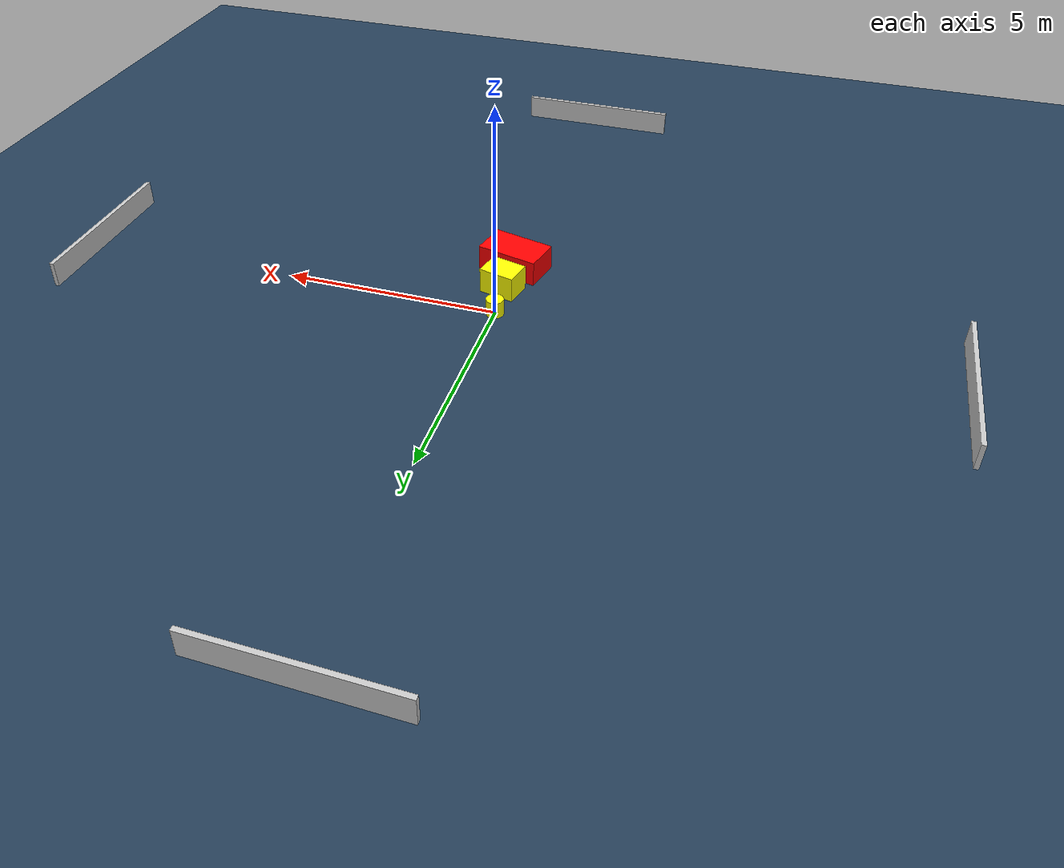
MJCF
<?xml version="1.0" ?>
<mujoco model="generated_environment">
  <option timestep="0.01" integrator="RK4" cone="elliptic"/>
  <default>
    <geom density="1"/>
  </default>
  <asset>
    <texture builtin="gradient" height="3072" name="skybox" rgb1="0.3 0.5 0.7" rgb2="0 0 0" type="skybox" width="512"/>
    <texture builtin="checker" height="300" name="groundplane" rgb1="0.2 0.3 0.4" rgb2="0.1 0.2 0.3" type="2d" width="300"/>
    <material name="groundplane" reflectance="0.2" texrepeat="5 5" texture="groundplane"/>
  </asset>
  <worldbody>
    <light dir="0 0 -1" directional="true" pos="0 0 1.5"/>
    <geom condim="3" friction="0.5 0.005 0.001" material="groundplane" name="floor" pos="0 0 0" size="0 0 0.05" type="plane"/>
    <body name="walls">
      <geom name="wall_1" condim="4" pos="-10.0 0.0 0.3" rgba="0.800000011920929 0.800000011920929 0.800000011920929 1.0" size="0.05 2.0 0.3" type="box"/>
      <geom name="wall_2" condim="4" pos="10.0 0.0 0.3" rgba="0.800000011920929 0.800000011920929 0.800000011920929 1.0" size="0.05 2.0 0.3" type="box"/>
      <geom name="wall_3" condim="4" pos="0.0 -10.0 0.3" rgba="0.800000011920929 0.800000011920929 0.800000011920929 1.0" size="2.0 0.05 0.3" type="box"/>
      <geom name="wall_4" condim="4" pos="0.0 10.0 0.3" rgba="0.800000011920929 0.800000011920929 0.800000011920929 1.0" size="2.0 0.05 0.3" type="box"/>
    </body>
    <body name="robot">
      <joint name="joint_x" type="slide" pos="0 0 0" axis="1 0 0"/>
      <joint name="joint_y" type="slide" pos="0 0 0" axis="0 1 0"/>
      <geom name="robot" type="cylinder" pos="0.0 0.0 0.2" size="0.2 0.2 0.0" mass="5.0" friction="1.0 0.005 0.0001" condim="4" rgba="1.0 1.0 0.0 1.0"/>
    </body>
    <body name="obstacle_1_movable">
      <geom name="obstacle_1_movable" condim="4" pos="0.11351351241951584 -0.9533414655562212 0.3" euler="0 0 166.14806915712057" friction="0.0 0.005 0.001" rgba="1.0 1.0 0.0 1.0" size="0.4183075641414603 0.3198479167236093 0.3" type="box" mass="0.1"/>
      <joint type="free"/>
    </body>
    <body name="obstacle_2_static">
      <geom name="obstacle_2_static" condim="4" pos="0.09856477145757733 -1.9070775242705216 0.3" euler="0 0 166.51604947800857" friction="0.0 0.005 0.001" rgba="1.0 0.0 0.0 1.0" size="0.7321527592703121 0.434891695894488 0.3" type="box"/>
    </body>
  </worldbody>
  <actuator>
    <motor name="actuator_x" joint="joint_x" gear="1" ctrlrange="-1 1"/>
    <motor name="actuator_y" joint="joint_y" gear="1" ctrlrange="-1 1"/>
  </actuator>
</mujoco>
